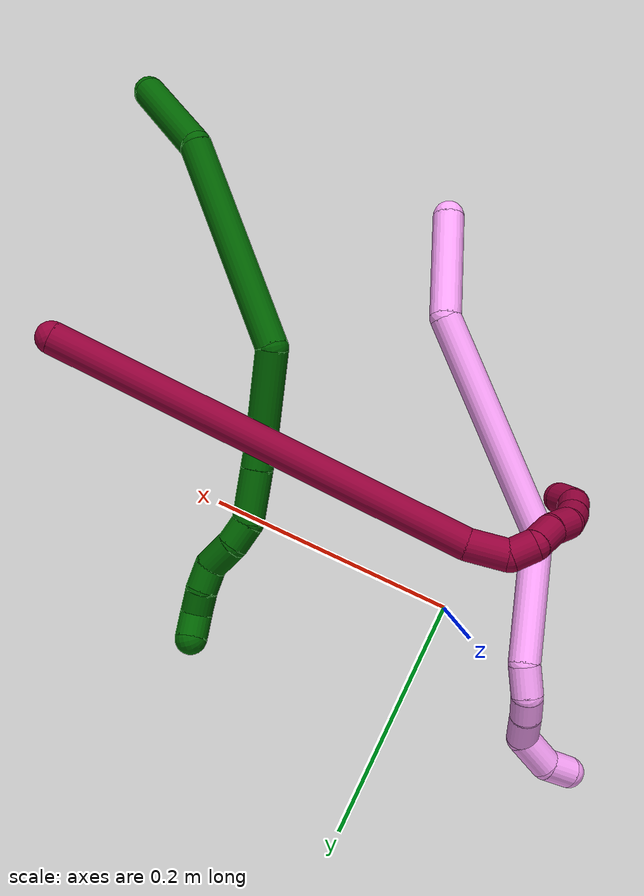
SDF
<sdf version="1.7">
 <world name="default">
  <model name="4">
   <static>0</static>
   <link name="4">
    <collision name="collision-cylinder-e_1_1_4">
     <pose>-0.019061 0.038512 -0.01114 -1.85237 -0.443818 0.583166</pose>
     <geometry><cylinder><radius>0.0125</radius><length>0.088783</length></cylinder></geometry>
     <surface>
      <friction><ode><mu>1.16</mu><mu2>1.16</mu2><slip1>0</slip1><slip2>0</slip2></ode></friction>
      <contact><ode><kp>1e+06</kp><kd>1</kd><max_vel>0</max_vel><min_depth>0.001</min_depth></ode></contact>
     </surface>
    </collision>
    <visual name="visual-cylinder-e_1_1_4">
     <pose>-0.019061 0.038512 -0.01114 -1.85237 -0.443818 0.583166</pose>
     <geometry><cylinder><radius>0.0125</radius><length>0.088783</length></cylinder></geometry>
     <material><ambient>1 0.65098 0.996078 1</ambient></material>
    </visual>
    <collision name="collision-cylinder-e_2_4_5">
     <pose>-0.097129 0.122 -0.073663 -2.42259 -0.712619 1.56107</pose>
     <geometry><cylinder><radius>0.0125</radius><length>0.180497</length></cylinder></geometry>
     <surface>
      <friction><ode><mu>1.16</mu><mu2>1.16</mu2><slip1>0</slip1><slip2>0</slip2></ode></friction>
      <contact><ode><kp>1e+06</kp><kd>1</kd><max_vel>0</max_vel><min_depth>0.001</min_depth></ode></contact>
     </surface>
    </collision>
    <visual name="visual-cylinder-e_2_4_5">
     <pose>-0.097129 0.122 -0.073663 -2.42259 -0.712619 1.56107</pose>
     <geometry><cylinder><radius>0.0125</radius><length>0.180497</length></cylinder></geometry>
     <material><ambient>1 0.65098 0.996078 1</ambient></material>
    </visual>
    <collision name="collision-cylinder-e_3_5_6">
     <pose>-0.173007 0.212215 -0.142862 -1.94596 -0.334021 0.485383</pose>
     <geometry><cylinder><radius>0.0125</radius><length>0.10293</length></cylinder></geometry>
     <surface>
      <friction><ode><mu>1.16</mu><mu2>1.16</mu2><slip1>0</slip1><slip2>0</slip2></ode></friction>
      <contact><ode><kp>1e+06</kp><kd>1</kd><max_vel>0</max_vel><min_depth>0.001</min_depth></ode></contact>
     </surface>
    </collision>
    <visual name="visual-cylinder-e_3_5_6">
     <pose>-0.173007 0.212215 -0.142862 -1.94596 -0.334021 0.485383</pose>
     <geometry><cylinder><radius>0.0125</radius><length>0.10293</length></cylinder></geometry>
     <material><ambient>1 0.65098 0.996078 1</ambient></material>
    </visual>
    <collision name="collision-cylinder-e_4_6_7">
     <pose>-0.194781 0.265745 -0.168516 -2.32812 -0.40571 0.89096</pose>
     <geometry><cylinder><radius>0.0125</radius><length>0.024835</length></cylinder></geometry>
     <surface>
      <friction><ode><mu>1.16</mu><mu2>1.16</mu2><slip1>0</slip1><slip2>0</slip2></ode></friction>
      <contact><ode><kp>1e+06</kp><kd>1</kd><max_vel>0</max_vel><min_depth>0.001</min_depth></ode></contact>
     </surface>
    </collision>
    <visual name="visual-cylinder-e_4_6_7">
     <pose>-0.194781 0.265745 -0.168516 -2.32812 -0.40571 0.89096</pose>
     <geometry><cylinder><radius>0.0125</radius><length>0.024835</length></cylinder></geometry>
     <material><ambient>1 0.65098 0.996078 1</ambient></material>
    </visual>
    <collision name="collision-cylinder-e_5_7_8">
     <pose>-0.200393 0.278351 -0.185566 -2.7035 -0.06987 0.311444</pose>
     <geometry><cylinder><radius>0.0125</radius><length>0.020396</length></cylinder></geometry>
     <surface>
      <friction><ode><mu>1.16</mu><mu2>1.16</mu2><slip1>0</slip1><slip2>0</slip2></ode></friction>
      <contact><ode><kp>1e+06</kp><kd>1</kd><max_vel>0</max_vel><min_depth>0.001</min_depth></ode></contact>
     </surface>
    </collision>
    <visual name="visual-cylinder-e_5_7_8">
     <pose>-0.200393 0.278351 -0.185566 -2.7035 -0.06987 0.311444</pose>
     <geometry><cylinder><radius>0.0125</radius><length>0.020396</length></cylinder></geometry>
     <material><ambient>1 0.65098 0.996078 1</ambient></material>
    </visual>
    <collision name="collision-cylinder-e_6_8_9">
     <pose>-0.200862 0.287317 -0.206812 -2.7728 0.018843 -0.100945</pose>
     <geometry><cylinder><radius>0.0125</radius><length>0.025805</length></cylinder></geometry>
     <surface>
      <friction><ode><mu>1.16</mu><mu2>1.16</mu2><slip1>0</slip1><slip2>0</slip2></ode></friction>
      <contact><ode><kp>1e+06</kp><kd>1</kd><max_vel>0</max_vel><min_depth>0.001</min_depth></ode></contact>
     </surface>
    </collision>
    <visual name="visual-cylinder-e_6_8_9">
     <pose>-0.200862 0.287317 -0.206812 -2.7728 0.018843 -0.100945</pose>
     <geometry><cylinder><radius>0.0125</radius><length>0.025805</length></cylinder></geometry>
     <material><ambient>1 0.65098 0.996078 1</ambient></material>
    </visual>
    <collision name="collision-cylinder-e_7_9_10">
     <pose>-0.210386 0.293411 -0.231656 -3.02943 -0.648347 2.81052</pose>
     <geometry><cylinder><radius>0.0125</radius><length>0.032348</length></cylinder></geometry>
     <surface>
      <friction><ode><mu>1.16</mu><mu2>1.16</mu2><slip1>0</slip1><slip2>0</slip2></ode></friction>
      <contact><ode><kp>1e+06</kp><kd>1</kd><max_vel>0</max_vel><min_depth>0.001</min_depth></ode></contact>
     </surface>
    </collision>
    <visual name="visual-cylinder-e_7_9_10">
     <pose>-0.210386 0.293411 -0.231656 -3.02943 -0.648347 2.81052</pose>
     <geometry><cylinder><radius>0.0125</radius><length>0.032348</length></cylinder></geometry>
     <material><ambient>1 0.65098 0.996078 1</ambient></material>
    </visual>
    <collision name="collision-cylinder-e_8_10_2">
     <pose>-0.227407 0.290795 -0.253401 2.71518 -0.636577 -1.97894</pose>
     <geometry><cylinder><radius>0.0125</radius><length>0.024405</length></cylinder></geometry>
     <surface>
      <friction><ode><mu>1.16</mu><mu2>1.16</mu2><slip1>0</slip1><slip2>0</slip2></ode></friction>
      <contact><ode><kp>1e+06</kp><kd>1</kd><max_vel>0</max_vel><min_depth>0.001</min_depth></ode></contact>
     </surface>
    </collision>
    <visual name="visual-cylinder-e_8_10_2">
     <pose>-0.227407 0.290795 -0.253401 2.71518 -0.636577 -1.97894</pose>
     <geometry><cylinder><radius>0.0125</radius><length>0.024405</length></cylinder></geometry>
     <material><ambient>1 0.65098 0.996078 1</ambient></material>
    </visual>
    <collision name="collision-sphere-2">
     <pose>-0.234661 0.286737 -0.262335 0 -0 0</pose>
     <geometry><sphere><radius>0.0125</radius></sphere></geometry>
     <surface>
      <friction><ode><mu>1.16</mu><mu2>1.16</mu2><slip1>0</slip1><slip2>0</slip2></ode></friction>
      <contact><ode><kp>1e+06</kp><kd>1</kd><max_vel>0</max_vel><min_depth>0.001</min_depth></ode></contact>
     </surface>
    </collision>
    <visual name="visual-sphere-2">
     <pose>-0.234661 0.286737 -0.262335 0 -0 0</pose>
     <geometry><sphere><radius>0.0125</radius></sphere></geometry>
     <material><ambient>1 0.65098 0.996078 1</ambient></material>
    </visual>
    <collision name="collision-sphere-10">
     <pose>-0.220153 0.294854 -0.244467 0 -0 0</pose>
     <geometry><sphere><radius>0.0125</radius></sphere></geometry>
     <surface>
      <friction><ode><mu>1.16</mu><mu2>1.16</mu2><slip1>0</slip1><slip2>0</slip2></ode></friction>
      <contact><ode><kp>1e+06</kp><kd>1</kd><max_vel>0</max_vel><min_depth>0.001</min_depth></ode></contact>
     </surface>
    </collision>
    <visual name="visual-sphere-10">
     <pose>-0.220153 0.294854 -0.244467 0 -0 0</pose>
     <geometry><sphere><radius>0.0125</radius></sphere></geometry>
     <material><ambient>1 0.65098 0.996078 1</ambient></material>
    </visual>
    <collision name="collision-sphere-9">
     <pose>-0.200619 0.291968 -0.218845 0 -0 0</pose>
     <geometry><sphere><radius>0.0125</radius></sphere></geometry>
     <surface>
      <friction><ode><mu>1.16</mu><mu2>1.16</mu2><slip1>0</slip1><slip2>0</slip2></ode></friction>
      <contact><ode><kp>1e+06</kp><kd>1</kd><max_vel>0</max_vel><min_depth>0.001</min_depth></ode></contact>
     </surface>
    </collision>
    <visual name="visual-sphere-9">
     <pose>-0.200619 0.291968 -0.218845 0 -0 0</pose>
     <geometry><sphere><radius>0.0125</radius></sphere></geometry>
     <material><ambient>1 0.65098 0.996078 1</ambient></material>
    </visual>
    <collision name="collision-sphere-4">
     <pose>-0.038123 0.077024 -0.02228 0 -0 0</pose>
     <geometry><sphere><radius>0.0125</radius></sphere></geometry>
     <surface>
      <friction><ode><mu>1.16</mu><mu2>1.16</mu2><slip1>0</slip1><slip2>0</slip2></ode></friction>
      <contact><ode><kp>1e+06</kp><kd>1</kd><max_vel>0</max_vel><min_depth>0.001</min_depth></ode></contact>
     </surface>
    </collision>
    <visual name="visual-sphere-4">
     <pose>-0.038123 0.077024 -0.02228 0 -0 0</pose>
     <geometry><sphere><radius>0.0125</radius></sphere></geometry>
     <material><ambient>1 0.65098 0.996078 1</ambient></material>
    </visual>
    <collision name="collision-sphere-1">
     <geometry><sphere><radius>0.0125</radius></sphere></geometry>
     <surface>
      <friction><ode><mu>1.16</mu><mu2>1.16</mu2><slip1>0</slip1><slip2>0</slip2></ode></friction>
      <contact><ode><kp>1e+06</kp><kd>1</kd><max_vel>0</max_vel><min_depth>0.001</min_depth></ode></contact>
     </surface>
    </collision>
    <visual name="visual-sphere-1">
     <geometry><sphere><radius>0.0125</radius></sphere></geometry>
     <material><ambient>1 0.65098 0.996078 1</ambient></material>
    </visual>
    <collision name="collision-sphere-8">
     <pose>-0.201105 0.282667 -0.194779 0 -0 0</pose>
     <geometry><sphere><radius>0.0125</radius></sphere></geometry>
     <surface>
      <friction><ode><mu>1.16</mu><mu2>1.16</mu2><slip1>0</slip1><slip2>0</slip2></ode></friction>
      <contact><ode><kp>1e+06</kp><kd>1</kd><max_vel>0</max_vel><min_depth>0.001</min_depth></ode></contact>
     </surface>
    </collision>
    <visual name="visual-sphere-8">
     <pose>-0.201105 0.282667 -0.194779 0 -0 0</pose>
     <geometry><sphere><radius>0.0125</radius></sphere></geometry>
     <material><ambient>1 0.65098 0.996078 1</ambient></material>
    </visual>
    <collision name="collision-sphere-5">
     <pose>-0.156135 0.166976 -0.125047 0 -0 0</pose>
     <geometry><sphere><radius>0.0125</radius></sphere></geometry>
     <surface>
      <friction><ode><mu>1.16</mu><mu2>1.16</mu2><slip1>0</slip1><slip2>0</slip2></ode></friction>
      <contact><ode><kp>1e+06</kp><kd>1</kd><max_vel>0</max_vel><min_depth>0.001</min_depth></ode></contact>
     </surface>
    </collision>
    <visual name="visual-sphere-5">
     <pose>-0.156135 0.166976 -0.125047 0 -0 0</pose>
     <geometry><sphere><radius>0.0125</radius></sphere></geometry>
     <material><ambient>1 0.65098 0.996078 1</ambient></material>
    </visual>
    <collision name="collision-sphere-6">
     <pose>-0.18988 0.257454 -0.160678 0 -0 0</pose>
     <geometry><sphere><radius>0.0125</radius></sphere></geometry>
     <surface>
      <friction><ode><mu>1.16</mu><mu2>1.16</mu2><slip1>0</slip1><slip2>0</slip2></ode></friction>
      <contact><ode><kp>1e+06</kp><kd>1</kd><max_vel>0</max_vel><min_depth>0.001</min_depth></ode></contact>
     </surface>
    </collision>
    <visual name="visual-sphere-6">
     <pose>-0.18988 0.257454 -0.160678 0 -0 0</pose>
     <geometry><sphere><radius>0.0125</radius></sphere></geometry>
     <material><ambient>1 0.65098 0.996078 1</ambient></material>
    </visual>
    <collision name="collision-sphere-7">
     <pose>-0.199681 0.274036 -0.176354 0 -0 0</pose>
     <geometry><sphere><radius>0.0125</radius></sphere></geometry>
     <surface>
      <friction><ode><mu>1.16</mu><mu2>1.16</mu2><slip1>0</slip1><slip2>0</slip2></ode></friction>
      <contact><ode><kp>1e+06</kp><kd>1</kd><max_vel>0</max_vel><min_depth>0.001</min_depth></ode></contact>
     </surface>
    </collision>
    <visual name="visual-sphere-7">
     <pose>-0.199681 0.274036 -0.176354 0 -0 0</pose>
     <geometry><sphere><radius>0.0125</radius></sphere></geometry>
     <material><ambient>1 0.65098 0.996078 1</ambient></material>
    </visual>
    <inertial>
     <pose>-0.12699 0.167125 -0.111949 0 -0 0</pose>
     <mass>0.5</mass>
     <inertia>
      <ixx>0.000563</ixx>
      <ixy>0</ixy>
      <ixz>0</ixz>
      <iyy>0.000666</iyy>
      <iyz>0</iyz>
      <izz>-2.1e-05</izz>
     </inertia>
    </inertial>
   </link>
   <pose>0.130208 -0.285234 0.011873 0.432468 0.464478 0.033016</pose>
  </model>
  <model name="6">
   <static>0</static>
   <link name="6">
    <collision name="collision-cylinder-e_1_1_4">
     <pose>-0.029648 0.02331 -0.0219 -2.32501 -0.747516 1.47289</pose>
     <geometry><cylinder><radius>0.0125</radius><length>0.087223</length></cylinder></geometry>
     <surface>
      <friction><ode><mu>1.16</mu><mu2>1.16</mu2><slip1>0</slip1><slip2>0</slip2></ode></friction>
      <contact><ode><kp>1e+06</kp><kd>1</kd><max_vel>0</max_vel><min_depth>0.001</min_depth></ode></contact>
     </surface>
    </collision>
    <visual name="visual-cylinder-e_1_1_4">
     <pose>-0.029648 0.02331 -0.0219 -2.32501 -0.747516 1.47289</pose>
     <geometry><cylinder><radius>0.0125</radius><length>0.087223</length></cylinder></geometry>
     <material><ambient>0 0.392157 0.003922 1</ambient></material>
    </visual>
    <collision name="collision-cylinder-e_2_4_5">
     <pose>-0.097392 0.121327 -0.059219 -1.77434 -0.463176 0.563527</pose>
     <geometry><cylinder><radius>0.0125</radius><length>0.17053</length></cylinder></geometry>
     <surface>
      <friction><ode><mu>1.16</mu><mu2>1.16</mu2><slip1>0</slip1><slip2>0</slip2></ode></friction>
      <contact><ode><kp>1e+06</kp><kd>1</kd><max_vel>0</max_vel><min_depth>0.001</min_depth></ode></contact>
     </surface>
    </collision>
    <visual name="visual-cylinder-e_2_4_5">
     <pose>-0.097392 0.121327 -0.059219 -1.77434 -0.463176 0.563527</pose>
     <geometry><cylinder><radius>0.0125</radius><length>0.17053</length></cylinder></geometry>
     <material><ambient>0 0.392157 0.003922 1</ambient></material>
    </visual>
    <collision name="collision-cylinder-e_3_5_6">
     <pose>-0.139745 0.228141 -0.059609 -1.13298 -0.119514 0.076068</pose>
     <geometry><cylinder><radius>0.0125</radius><length>0.071412</length></cylinder></geometry>
     <surface>
      <friction><ode><mu>1.16</mu><mu2>1.16</mu2><slip1>0</slip1><slip2>0</slip2></ode></friction>
      <contact><ode><kp>1e+06</kp><kd>1</kd><max_vel>0</max_vel><min_depth>0.001</min_depth></ode></contact>
     </surface>
    </collision>
    <visual name="visual-cylinder-e_3_5_6">
     <pose>-0.139745 0.228141 -0.059609 -1.13298 -0.119514 0.076068</pose>
     <geometry><cylinder><radius>0.0125</radius><length>0.071412</length></cylinder></geometry>
     <material><ambient>0 0.392157 0.003922 1</ambient></material>
    </visual>
    <collision name="collision-cylinder-e_4_6_7">
     <pose>-0.147599 0.269627 -0.040154 -1.12991 -0.333873 0.212815</pose>
     <geometry><cylinder><radius>0.0125</radius><length>0.021953</length></cylinder></geometry>
     <surface>
      <friction><ode><mu>1.16</mu><mu2>1.16</mu2><slip1>0</slip1><slip2>0</slip2></ode></friction>
      <contact><ode><kp>1e+06</kp><kd>1</kd><max_vel>0</max_vel><min_depth>0.001</min_depth></ode></contact>
     </surface>
    </collision>
    <visual name="visual-cylinder-e_4_6_7">
     <pose>-0.147599 0.269627 -0.040154 -1.12991 -0.333873 0.212815</pose>
     <geometry><cylinder><radius>0.0125</radius><length>0.021953</length></cylinder></geometry>
     <material><ambient>0 0.392157 0.003922 1</ambient></material>
    </visual>
    <collision name="collision-cylinder-e_5_7_8">
     <pose>-0.157773 0.296727 -0.027278 -1.12583 -0.323257 0.205055</pose>
     <geometry><cylinder><radius>0.0125</radius><length>0.041412</length></cylinder></geometry>
     <surface>
      <friction><ode><mu>1.16</mu><mu2>1.16</mu2><slip1>0</slip1><slip2>0</slip2></ode></friction>
      <contact><ode><kp>1e+06</kp><kd>1</kd><max_vel>0</max_vel><min_depth>0.001</min_depth></ode></contact>
     </surface>
    </collision>
    <visual name="visual-cylinder-e_5_7_8">
     <pose>-0.157773 0.296727 -0.027278 -1.12583 -0.323257 0.205055</pose>
     <geometry><cylinder><radius>0.0125</radius><length>0.041412</length></cylinder></geometry>
     <material><ambient>0 0.392157 0.003922 1</ambient></material>
    </visual>
    <collision name="collision-cylinder-e_6_8_9">
     <pose>-0.167753 0.320523 -0.011045 -0.662774 -0.331863 0.115118</pose>
     <geometry><cylinder><radius>0.0125</radius><length>0.020884</length></cylinder></geometry>
     <surface>
      <friction><ode><mu>1.16</mu><mu2>1.16</mu2><slip1>0</slip1><slip2>0</slip2></ode></friction>
      <contact><ode><kp>1e+06</kp><kd>1</kd><max_vel>0</max_vel><min_depth>0.001</min_depth></ode></contact>
     </surface>
    </collision>
    <visual name="visual-cylinder-e_6_8_9">
     <pose>-0.167753 0.320523 -0.011045 -0.662774 -0.331863 0.115118</pose>
     <geometry><cylinder><radius>0.0125</radius><length>0.020884</length></cylinder></geometry>
     <material><ambient>0 0.392157 0.003922 1</ambient></material>
    </visual>
    <collision name="collision-cylinder-e_7_9_10">
     <pose>-0.171839 0.332825 0.008193 -0.497923 -0.052399 0.013325</pose>
     <geometry><cylinder><radius>0.0125</radius><length>0.026114</length></cylinder></geometry>
     <surface>
      <friction><ode><mu>1.16</mu><mu2>1.16</mu2><slip1>0</slip1><slip2>0</slip2></ode></friction>
      <contact><ode><kp>1e+06</kp><kd>1</kd><max_vel>0</max_vel><min_depth>0.001</min_depth></ode></contact>
     </surface>
    </collision>
    <visual name="visual-cylinder-e_7_9_10">
     <pose>-0.171839 0.332825 0.008193 -0.497923 -0.052399 0.013325</pose>
     <geometry><cylinder><radius>0.0125</radius><length>0.026114</length></cylinder></geometry>
     <material><ambient>0 0.392157 0.003922 1</ambient></material>
    </visual>
    <collision name="collision-cylinder-e_8_10_11">
     <pose>-0.176315 0.346512 0.02519 -0.931903 -0.387555 0.196735</pose>
     <geometry><cylinder><radius>0.0125</radius><length>0.020073</length></cylinder></geometry>
     <surface>
      <friction><ode><mu>1.16</mu><mu2>1.16</mu2><slip1>0</slip1><slip2>0</slip2></ode></friction>
      <contact><ode><kp>1e+06</kp><kd>1</kd><max_vel>0</max_vel><min_depth>0.001</min_depth></ode></contact>
     </surface>
    </collision>
    <visual name="visual-cylinder-e_8_10_11">
     <pose>-0.176315 0.346512 0.02519 -0.931903 -0.387555 0.196735</pose>
     <geometry><cylinder><radius>0.0125</radius><length>0.020073</length></cylinder></geometry>
     <material><ambient>0 0.392157 0.003922 1</ambient></material>
    </visual>
    <collision name="collision-cylinder-e_9_11_12">
     <pose>-0.181657 0.362511 0.035965 -1.02098 -0.153366 0.086001</pose>
     <geometry><cylinder><radius>0.0125</radius><length>0.02027</length></cylinder></geometry>
     <surface>
      <friction><ode><mu>1.16</mu><mu2>1.16</mu2><slip1>0</slip1><slip2>0</slip2></ode></friction>
      <contact><ode><kp>1e+06</kp><kd>1</kd><max_vel>0</max_vel><min_depth>0.001</min_depth></ode></contact>
     </surface>
    </collision>
    <visual name="visual-cylinder-e_9_11_12">
     <pose>-0.181657 0.362511 0.035965 -1.02098 -0.153366 0.086001</pose>
     <geometry><cylinder><radius>0.0125</radius><length>0.02027</length></cylinder></geometry>
     <material><ambient>0 0.392157 0.003922 1</ambient></material>
    </visual>
    <collision name="collision-cylinder-e_10_12_2">
     <pose>-0.19006 0.377936 0.043827 -1.20612 -0.749235 0.528842</pose>
     <geometry><cylinder><radius>0.0125</radius><length>0.02013</length></cylinder></geometry>
     <surface>
      <friction><ode><mu>1.16</mu><mu2>1.16</mu2><slip1>0</slip1><slip2>0</slip2></ode></friction>
      <contact><ode><kp>1e+06</kp><kd>1</kd><max_vel>0</max_vel><min_depth>0.001</min_depth></ode></contact>
     </surface>
    </collision>
    <visual name="visual-cylinder-e_10_12_2">
     <pose>-0.19006 0.377936 0.043827 -1.20612 -0.749235 0.528842</pose>
     <geometry><cylinder><radius>0.0125</radius><length>0.02013</length></cylinder></geometry>
     <material><ambient>0 0.392157 0.003922 1</ambient></material>
    </visual>
    <collision name="collision-sphere-2">
     <pose>-0.196915 0.384821 0.046455 0 -0 0</pose>
     <geometry><sphere><radius>0.0125</radius></sphere></geometry>
     <surface>
      <friction><ode><mu>1.16</mu><mu2>1.16</mu2><slip1>0</slip1><slip2>0</slip2></ode></friction>
      <contact><ode><kp>1e+06</kp><kd>1</kd><max_vel>0</max_vel><min_depth>0.001</min_depth></ode></contact>
     </surface>
    </collision>
    <visual name="visual-sphere-2">
     <pose>-0.196915 0.384821 0.046455 0 -0 0</pose>
     <geometry><sphere><radius>0.0125</radius></sphere></geometry>
     <material><ambient>0 0.392157 0.003922 1</ambient></material>
    </visual>
    <collision name="collision-sphere-12">
     <pose>-0.183205 0.371051 0.041199 0 -0 0</pose>
     <geometry><sphere><radius>0.0125</radius></sphere></geometry>
     <surface>
      <friction><ode><mu>1.16</mu><mu2>1.16</mu2><slip1>0</slip1><slip2>0</slip2></ode></friction>
      <contact><ode><kp>1e+06</kp><kd>1</kd><max_vel>0</max_vel><min_depth>0.001</min_depth></ode></contact>
     </surface>
    </collision>
    <visual name="visual-sphere-12">
     <pose>-0.183205 0.371051 0.041199 0 -0 0</pose>
     <geometry><sphere><radius>0.0125</radius></sphere></geometry>
     <material><ambient>0 0.392157 0.003922 1</ambient></material>
    </visual>
    <collision name="collision-sphere-11">
     <pose>-0.180109 0.353971 0.030731 0 -0 0</pose>
     <geometry><sphere><radius>0.0125</radius></sphere></geometry>
     <surface>
      <friction><ode><mu>1.16</mu><mu2>1.16</mu2><slip1>0</slip1><slip2>0</slip2></ode></friction>
      <contact><ode><kp>1e+06</kp><kd>1</kd><max_vel>0</max_vel><min_depth>0.001</min_depth></ode></contact>
     </surface>
    </collision>
    <visual name="visual-sphere-11">
     <pose>-0.180109 0.353971 0.030731 0 -0 0</pose>
     <geometry><sphere><radius>0.0125</radius></sphere></geometry>
     <material><ambient>0 0.392157 0.003922 1</ambient></material>
    </visual>
    <collision name="collision-sphere-10">
     <pose>-0.172522 0.339052 0.019649 0 -0 0</pose>
     <geometry><sphere><radius>0.0125</radius></sphere></geometry>
     <surface>
      <friction><ode><mu>1.16</mu><mu2>1.16</mu2><slip1>0</slip1><slip2>0</slip2></ode></friction>
      <contact><ode><kp>1e+06</kp><kd>1</kd><max_vel>0</max_vel><min_depth>0.001</min_depth></ode></contact>
     </surface>
    </collision>
    <visual name="visual-sphere-10">
     <pose>-0.172522 0.339052 0.019649 0 -0 0</pose>
     <geometry><sphere><radius>0.0125</radius></sphere></geometry>
     <material><ambient>0 0.392157 0.003922 1</ambient></material>
    </visual>
    <collision name="collision-sphere-9">
     <pose>-0.171155 0.326597 -0.003262 0 -0 0</pose>
     <geometry><sphere><radius>0.0125</radius></sphere></geometry>
     <surface>
      <friction><ode><mu>1.16</mu><mu2>1.16</mu2><slip1>0</slip1><slip2>0</slip2></ode></friction>
      <contact><ode><kp>1e+06</kp><kd>1</kd><max_vel>0</max_vel><min_depth>0.001</min_depth></ode></contact>
     </surface>
    </collision>
    <visual name="visual-sphere-9">
     <pose>-0.171155 0.326597 -0.003262 0 -0 0</pose>
     <geometry><sphere><radius>0.0125</radius></sphere></geometry>
     <material><ambient>0 0.392157 0.003922 1</ambient></material>
    </visual>
    <collision name="collision-sphere-4">
     <pose>-0.059296 0.04662 -0.043799 0 -0 0</pose>
     <geometry><sphere><radius>0.0125</radius></sphere></geometry>
     <surface>
      <friction><ode><mu>1.16</mu><mu2>1.16</mu2><slip1>0</slip1><slip2>0</slip2></ode></friction>
      <contact><ode><kp>1e+06</kp><kd>1</kd><max_vel>0</max_vel><min_depth>0.001</min_depth></ode></contact>
     </surface>
    </collision>
    <visual name="visual-sphere-4">
     <pose>-0.059296 0.04662 -0.043799 0 -0 0</pose>
     <geometry><sphere><radius>0.0125</radius></sphere></geometry>
     <material><ambient>0 0.392157 0.003922 1</ambient></material>
    </visual>
    <collision name="collision-sphere-1">
     <geometry><sphere><radius>0.0125</radius></sphere></geometry>
     <surface>
      <friction><ode><mu>1.16</mu><mu2>1.16</mu2><slip1>0</slip1><slip2>0</slip2></ode></friction>
      <contact><ode><kp>1e+06</kp><kd>1</kd><max_vel>0</max_vel><min_depth>0.001</min_depth></ode></contact>
     </surface>
    </collision>
    <visual name="visual-sphere-1">
     <geometry><sphere><radius>0.0125</radius></sphere></geometry>
     <material><ambient>0 0.392157 0.003922 1</ambient></material>
    </visual>
    <collision name="collision-sphere-8">
     <pose>-0.16435 0.314448 -0.018827 0 -0 0</pose>
     <geometry><sphere><radius>0.0125</radius></sphere></geometry>
     <surface>
      <friction><ode><mu>1.16</mu><mu2>1.16</mu2><slip1>0</slip1><slip2>0</slip2></ode></friction>
      <contact><ode><kp>1e+06</kp><kd>1</kd><max_vel>0</max_vel><min_depth>0.001</min_depth></ode></contact>
     </surface>
    </collision>
    <visual name="visual-sphere-8">
     <pose>-0.16435 0.314448 -0.018827 0 -0 0</pose>
     <geometry><sphere><radius>0.0125</radius></sphere></geometry>
     <material><ambient>0 0.392157 0.003922 1</ambient></material>
    </visual>
    <collision name="collision-sphere-5">
     <pose>-0.135487 0.196034 -0.074639 0 -0 0</pose>
     <geometry><sphere><radius>0.0125</radius></sphere></geometry>
     <surface>
      <friction><ode><mu>1.16</mu><mu2>1.16</mu2><slip1>0</slip1><slip2>0</slip2></ode></friction>
      <contact><ode><kp>1e+06</kp><kd>1</kd><max_vel>0</max_vel><min_depth>0.001</min_depth></ode></contact>
     </surface>
    </collision>
    <visual name="visual-sphere-5">
     <pose>-0.135487 0.196034 -0.074639 0 -0 0</pose>
     <geometry><sphere><radius>0.0125</radius></sphere></geometry>
     <material><ambient>0 0.392157 0.003922 1</ambient></material>
    </visual>
    <collision name="collision-sphere-6">
     <pose>-0.144002 0.260248 -0.044579 0 -0 0</pose>
     <geometry><sphere><radius>0.0125</radius></sphere></geometry>
     <surface>
      <friction><ode><mu>1.16</mu><mu2>1.16</mu2><slip1>0</slip1><slip2>0</slip2></ode></friction>
      <contact><ode><kp>1e+06</kp><kd>1</kd><max_vel>0</max_vel><min_depth>0.001</min_depth></ode></contact>
     </surface>
    </collision>
    <visual name="visual-sphere-6">
     <pose>-0.144002 0.260248 -0.044579 0 -0 0</pose>
     <geometry><sphere><radius>0.0125</radius></sphere></geometry>
     <material><ambient>0 0.392157 0.003922 1</ambient></material>
    </visual>
    <collision name="collision-sphere-7">
     <pose>-0.151196 0.279005 -0.035728 0 -0 0</pose>
     <geometry><sphere><radius>0.0125</radius></sphere></geometry>
     <surface>
      <friction><ode><mu>1.16</mu><mu2>1.16</mu2><slip1>0</slip1><slip2>0</slip2></ode></friction>
      <contact><ode><kp>1e+06</kp><kd>1</kd><max_vel>0</max_vel><min_depth>0.001</min_depth></ode></contact>
     </surface>
    </collision>
    <visual name="visual-sphere-7">
     <pose>-0.151196 0.279005 -0.035728 0 -0 0</pose>
     <geometry><sphere><radius>0.0125</radius></sphere></geometry>
     <material><ambient>0 0.392157 0.003922 1</ambient></material>
    </visual>
    <inertial>
     <pose>-0.115971 0.189037 -0.032353 0 -0 0</pose>
     <mass>0.5</mass>
     <inertia>
      <ixx>0.000604</ixx>
      <ixy>0</ixy>
      <ixz>0</ixz>
      <iyy>0.000355</iyy>
      <iyz>0</iyz>
      <izz>-0.000202</izz>
     </inertia>
    </inertial>
   </link>
   <pose>0.388379 -0.273746 0.011839 -2.3715 1.10052 -1.64546</pose>
  </model>
  <model name="8">
   <static>0</static>
   <link name="8">
    <collision name="collision-cylinder-e_1_1_4">
     <pose>-0.126125 -0.023449 0.111203 0.207823 -0.837385 -0.09275</pose>
     <geometry><cylinder><radius>0.0125</radius><length>0.33955</length></cylinder></geometry>
     <surface>
      <friction><ode><mu>1.16</mu><mu2>1.16</mu2><slip1>0</slip1><slip2>0</slip2></ode></friction>
      <contact><ode><kp>1e+06</kp><kd>1</kd><max_vel>0</max_vel><min_depth>0.001</min_depth></ode></contact>
     </surface>
    </collision>
    <visual name="visual-cylinder-e_1_1_4">
     <pose>-0.126125 -0.023449 0.111203 0.207823 -0.837385 -0.09275</pose>
     <geometry><cylinder><radius>0.0125</radius><length>0.33955</length></cylinder></geometry>
     <material><ambient>0.584314 0 0.227451 1</ambient></material>
    </visual>
    <collision name="collision-cylinder-e_2_4_5">
     <pose>-0.263171 -0.044846 0.234473 -0.168488 -0.728514 0.06437</pose>
     <geometry><cylinder><radius>0.0125</radius><length>0.032807</length></cylinder></geometry>
     <surface>
      <friction><ode><mu>1.16</mu><mu2>1.16</mu2><slip1>0</slip1><slip2>0</slip2></ode></friction>
      <contact><ode><kp>1e+06</kp><kd>1</kd><max_vel>0</max_vel><min_depth>0.001</min_depth></ode></contact>
     </surface>
    </collision>
    <visual name="visual-cylinder-e_2_4_5">
     <pose>-0.263171 -0.044846 0.234473 -0.168488 -0.728514 0.06437</pose>
     <geometry><cylinder><radius>0.0125</radius><length>0.032807</length></cylinder></geometry>
     <material><ambient>0.584314 0 0.227451 1</ambient></material>
    </visual>
    <collision name="collision-cylinder-e_3_5_6">
     <pose>-0.274474 -0.040885 0.256403 -0.191144 -0.03802 0.003645</pose>
     <geometry><cylinder><radius>0.0125</radius><length>0.020108</length></cylinder></geometry>
     <surface>
      <friction><ode><mu>1.16</mu><mu2>1.16</mu2><slip1>0</slip1><slip2>0</slip2></ode></friction>
      <contact><ode><kp>1e+06</kp><kd>1</kd><max_vel>0</max_vel><min_depth>0.001</min_depth></ode></contact>
     </surface>
    </collision>
    <visual name="visual-cylinder-e_3_5_6">
     <pose>-0.274474 -0.040885 0.256403 -0.191144 -0.03802 0.003645</pose>
     <geometry><cylinder><radius>0.0125</radius><length>0.020108</length></cylinder></geometry>
     <material><ambient>0.584314 0 0.227451 1</ambient></material>
    </visual>
    <collision name="collision-cylinder-e_4_6_7">
     <pose>-0.270666 -0.044086 0.276544 0.461391 0.350016 0.083013</pose>
     <geometry><cylinder><radius>0.0125</radius><length>0.024437</length></cylinder></geometry>
     <surface>
      <friction><ode><mu>1.16</mu><mu2>1.16</mu2><slip1>0</slip1><slip2>0</slip2></ode></friction>
      <contact><ode><kp>1e+06</kp><kd>1</kd><max_vel>0</max_vel><min_depth>0.001</min_depth></ode></contact>
     </surface>
    </collision>
    <visual name="visual-cylinder-e_4_6_7">
     <pose>-0.270666 -0.044086 0.276544 0.461391 0.350016 0.083013</pose>
     <geometry><cylinder><radius>0.0125</radius><length>0.024437</length></cylinder></geometry>
     <material><ambient>0.584314 0 0.227451 1</ambient></material>
    </visual>
    <collision name="collision-cylinder-e_5_7_8">
     <pose>-0.265105 -0.055202 0.296383 0.560864 0.120887 0.034857</pose>
     <geometry><cylinder><radius>0.0125</radius><length>0.022748</length></cylinder></geometry>
     <surface>
      <friction><ode><mu>1.16</mu><mu2>1.16</mu2><slip1>0</slip1><slip2>0</slip2></ode></friction>
      <contact><ode><kp>1e+06</kp><kd>1</kd><max_vel>0</max_vel><min_depth>0.001</min_depth></ode></contact>
     </surface>
    </collision>
    <visual name="visual-cylinder-e_5_7_8">
     <pose>-0.265105 -0.055202 0.296383 0.560864 0.120887 0.034857</pose>
     <geometry><cylinder><radius>0.0125</radius><length>0.022748</length></cylinder></geometry>
     <material><ambient>0.584314 0 0.227451 1</ambient></material>
    </visual>
    <collision name="collision-cylinder-e_6_8_9">
     <pose>-0.259591 -0.068185 0.312082 0.849364 0.419382 0.191883</pose>
     <geometry><cylinder><radius>0.0125</radius><length>0.020348</length></cylinder></geometry>
     <surface>
      <friction><ode><mu>1.16</mu><mu2>1.16</mu2><slip1>0</slip1><slip2>0</slip2></ode></friction>
      <contact><ode><kp>1e+06</kp><kd>1</kd><max_vel>0</max_vel><min_depth>0.001</min_depth></ode></contact>
     </surface>
    </collision>
    <visual name="visual-cylinder-e_6_8_9">
     <pose>-0.259591 -0.068185 0.312082 0.849364 0.419382 0.191883</pose>
     <geometry><cylinder><radius>0.0125</radius><length>0.020348</length></cylinder></geometry>
     <material><ambient>0.584314 0 0.227451 1</ambient></material>
    </visual>
    <collision name="collision-cylinder-e_7_9_10">
     <pose>-0.249884 -0.081661 0.323397 0.898034 0.589949 0.290739</pose>
     <geometry><cylinder><radius>0.0125</radius><length>0.020001</length></cylinder></geometry>
     <surface>
      <friction><ode><mu>1.16</mu><mu2>1.16</mu2><slip1>0</slip1><slip2>0</slip2></ode></friction>
      <contact><ode><kp>1e+06</kp><kd>1</kd><max_vel>0</max_vel><min_depth>0.001</min_depth></ode></contact>
     </surface>
    </collision>
    <visual name="visual-cylinder-e_7_9_10">
     <pose>-0.249884 -0.081661 0.323397 0.898034 0.589949 0.290739</pose>
     <geometry><cylinder><radius>0.0125</radius><length>0.020001</length></cylinder></geometry>
     <material><ambient>0.584314 0 0.227451 1</ambient></material>
    </visual>
    <collision name="collision-cylinder-e_8_10_2">
     <pose>-0.238023 -0.09587 0.327621 1.694 0.681258 0.76281</pose>
     <geometry><cylinder><radius>0.0125</radius><length>0.02</length></cylinder></geometry>
     <surface>
      <friction><ode><mu>1.16</mu><mu2>1.16</mu2><slip1>0</slip1><slip2>0</slip2></ode></friction>
      <contact><ode><kp>1e+06</kp><kd>1</kd><max_vel>0</max_vel><min_depth>0.001</min_depth></ode></contact>
     </surface>
    </collision>
    <visual name="visual-cylinder-e_8_10_2">
     <pose>-0.238023 -0.09587 0.327621 1.694 0.681258 0.76281</pose>
     <geometry><cylinder><radius>0.0125</radius><length>0.02</length></cylinder></geometry>
     <material><ambient>0.584314 0 0.227451 1</ambient></material>
    </visual>
    <collision name="collision-sphere-2">
     <pose>-0.231725 -0.103579 0.326667 0 -0 0</pose>
     <geometry><sphere><radius>0.0125</radius></sphere></geometry>
     <surface>
      <friction><ode><mu>1.16</mu><mu2>1.16</mu2><slip1>0</slip1><slip2>0</slip2></ode></friction>
      <contact><ode><kp>1e+06</kp><kd>1</kd><max_vel>0</max_vel><min_depth>0.001</min_depth></ode></contact>
     </surface>
    </collision>
    <visual name="visual-sphere-2">
     <pose>-0.231725 -0.103579 0.326667 0 -0 0</pose>
     <geometry><sphere><radius>0.0125</radius></sphere></geometry>
     <material><ambient>0.584314 0 0.227451 1</ambient></material>
    </visual>
    <collision name="collision-sphere-10">
     <pose>-0.244321 -0.088161 0.328576 0 -0 0</pose>
     <geometry><sphere><radius>0.0125</radius></sphere></geometry>
     <surface>
      <friction><ode><mu>1.16</mu><mu2>1.16</mu2><slip1>0</slip1><slip2>0</slip2></ode></friction>
      <contact><ode><kp>1e+06</kp><kd>1</kd><max_vel>0</max_vel><min_depth>0.001</min_depth></ode></contact>
     </surface>
    </collision>
    <visual name="visual-sphere-10">
     <pose>-0.244321 -0.088161 0.328576 0 -0 0</pose>
     <geometry><sphere><radius>0.0125</radius></sphere></geometry>
     <material><ambient>0.584314 0 0.227451 1</ambient></material>
    </visual>
    <collision name="collision-sphere-9">
     <pose>-0.255448 -0.075162 0.318219 0 -0 0</pose>
     <geometry><sphere><radius>0.0125</radius></sphere></geometry>
     <surface>
      <friction><ode><mu>1.16</mu><mu2>1.16</mu2><slip1>0</slip1><slip2>0</slip2></ode></friction>
      <contact><ode><kp>1e+06</kp><kd>1</kd><max_vel>0</max_vel><min_depth>0.001</min_depth></ode></contact>
     </surface>
    </collision>
    <visual name="visual-sphere-9">
     <pose>-0.255448 -0.075162 0.318219 0 -0 0</pose>
     <geometry><sphere><radius>0.0125</radius></sphere></geometry>
     <material><ambient>0.584314 0 0.227451 1</ambient></material>
    </visual>
    <collision name="collision-sphere-4">
     <pose>-0.25225 -0.046898 0.222407 0 -0 0</pose>
     <geometry><sphere><radius>0.0125</radius></sphere></geometry>
     <surface>
      <friction><ode><mu>1.16</mu><mu2>1.16</mu2><slip1>0</slip1><slip2>0</slip2></ode></friction>
      <contact><ode><kp>1e+06</kp><kd>1</kd><max_vel>0</max_vel><min_depth>0.001</min_depth></ode></contact>
     </surface>
    </collision>
    <visual name="visual-sphere-4">
     <pose>-0.25225 -0.046898 0.222407 0 -0 0</pose>
     <geometry><sphere><radius>0.0125</radius></sphere></geometry>
     <material><ambient>0.584314 0 0.227451 1</ambient></material>
    </visual>
    <collision name="collision-sphere-1">
     <geometry><sphere><radius>0.0125</radius></sphere></geometry>
     <surface>
      <friction><ode><mu>1.16</mu><mu2>1.16</mu2><slip1>0</slip1><slip2>0</slip2></ode></friction>
      <contact><ode><kp>1e+06</kp><kd>1</kd><max_vel>0</max_vel><min_depth>0.001</min_depth></ode></contact>
     </surface>
    </collision>
    <visual name="visual-sphere-1">
     <geometry><sphere><radius>0.0125</radius></sphere></geometry>
     <material><ambient>0.584314 0 0.227451 1</ambient></material>
    </visual>
    <collision name="collision-sphere-8">
     <pose>-0.263733 -0.061208 0.305944 0 -0 0</pose>
     <geometry><sphere><radius>0.0125</radius></sphere></geometry>
     <surface>
      <friction><ode><mu>1.16</mu><mu2>1.16</mu2><slip1>0</slip1><slip2>0</slip2></ode></friction>
      <contact><ode><kp>1e+06</kp><kd>1</kd><max_vel>0</max_vel><min_depth>0.001</min_depth></ode></contact>
     </surface>
    </collision>
    <visual name="visual-sphere-8">
     <pose>-0.263733 -0.061208 0.305944 0 -0 0</pose>
     <geometry><sphere><radius>0.0125</radius></sphere></geometry>
     <material><ambient>0.584314 0 0.227451 1</ambient></material>
    </visual>
    <collision name="collision-sphere-5">
     <pose>-0.274092 -0.042794 0.24654 0 -0 0</pose>
     <geometry><sphere><radius>0.0125</radius></sphere></geometry>
     <surface>
      <friction><ode><mu>1.16</mu><mu2>1.16</mu2><slip1>0</slip1><slip2>0</slip2></ode></friction>
      <contact><ode><kp>1e+06</kp><kd>1</kd><max_vel>0</max_vel><min_depth>0.001</min_depth></ode></contact>
     </surface>
    </collision>
    <visual name="visual-sphere-5">
     <pose>-0.274092 -0.042794 0.24654 0 -0 0</pose>
     <geometry><sphere><radius>0.0125</radius></sphere></geometry>
     <material><ambient>0.584314 0 0.227451 1</ambient></material>
    </visual>
    <collision name="collision-sphere-6">
     <pose>-0.274856 -0.038976 0.266267 0 -0 0</pose>
     <geometry><sphere><radius>0.0125</radius></sphere></geometry>
     <surface>
      <friction><ode><mu>1.16</mu><mu2>1.16</mu2><slip1>0</slip1><slip2>0</slip2></ode></friction>
      <contact><ode><kp>1e+06</kp><kd>1</kd><max_vel>0</max_vel><min_depth>0.001</min_depth></ode></contact>
     </surface>
    </collision>
    <visual name="visual-sphere-6">
     <pose>-0.274856 -0.038976 0.266267 0 -0 0</pose>
     <geometry><sphere><radius>0.0125</radius></sphere></geometry>
     <material><ambient>0.584314 0 0.227451 1</ambient></material>
    </visual>
    <collision name="collision-sphere-7">
     <pose>-0.266477 -0.049196 0.286822 0 -0 0</pose>
     <geometry><sphere><radius>0.0125</radius></sphere></geometry>
     <surface>
      <friction><ode><mu>1.16</mu><mu2>1.16</mu2><slip1>0</slip1><slip2>0</slip2></ode></friction>
      <contact><ode><kp>1e+06</kp><kd>1</kd><max_vel>0</max_vel><min_depth>0.001</min_depth></ode></contact>
     </surface>
    </collision>
    <visual name="visual-sphere-7">
     <pose>-0.266477 -0.049196 0.286822 0 -0 0</pose>
     <geometry><sphere><radius>0.0125</radius></sphere></geometry>
     <material><ambient>0.584314 0 0.227451 1</ambient></material>
    </visual>
    <inertial>
     <pose>-0.169329 -0.035054 0.166957 0 -0 0</pose>
     <mass>0.5</mass>
     <inertia>
      <ixx>0.001976</ixx>
      <ixy>0</ixy>
      <ixz>0</ixz>
      <iyy>0.00304</iyy>
      <iyz>0</iyz>
      <izz>0.002915</izz>
     </inertia>
    </inertial>
   </link>
   <pose>0.354986 -0.062696 0.100986 1.8037 0.341486 -0.674788</pose>
  </model>
 </world>
</sdf>
